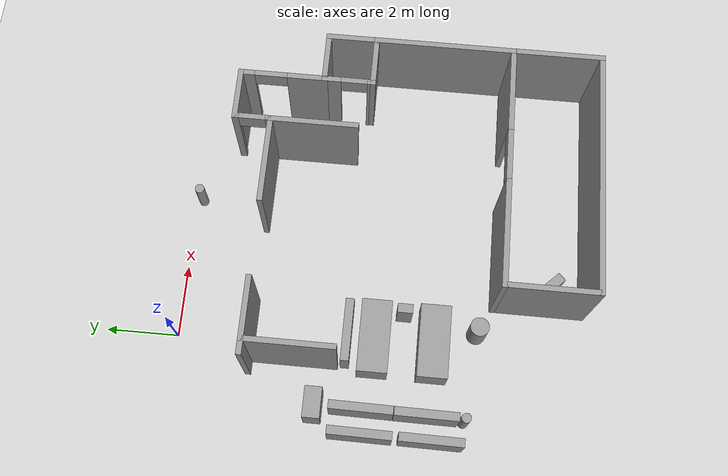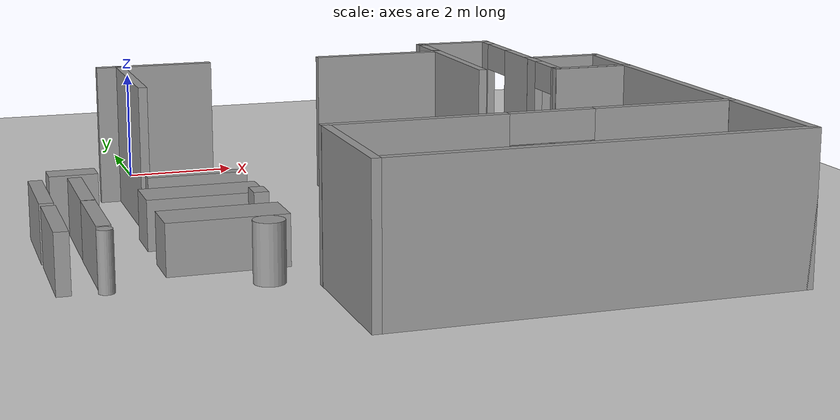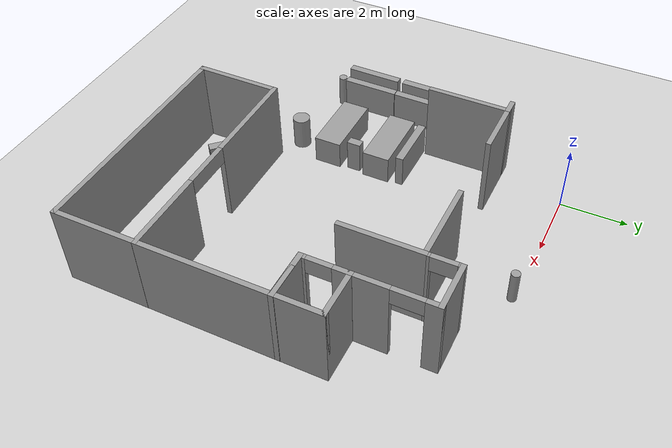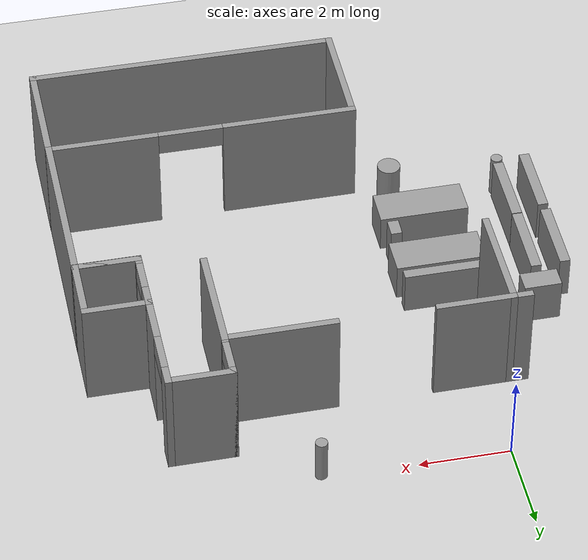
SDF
<sdf version="1.9">
 <world name="default">
  <model name="ground_plane">
   <static>true</static>
   <link name="link">
    <collision name="collision">
     <geometry><plane><normal>0 0 1</normal><size>100 100</size></plane></geometry>
     <surface><friction><ode><mu>100</mu><mu2>50</mu2></ode></friction></surface>
    </collision>
    <visual name="visual">
     <cast_shadows>false</cast_shadows>
     <geometry><plane><normal>0 0 1</normal><size>100 100</size></plane></geometry>
     <material>
      <script><uri>file://media/materials/scripts/gazebo.material</uri><name>Gazebo/Grey</name></script>
     </material>
    </visual>
   </link>
  </model>
  <model name="cma_parede_t">
   <pose>0.15995500000000001 -3.2401599999999999 0 0 0 0</pose>
   <link name="Wall_15">
    <collision name="Wall_15_Collision">
     <geometry><box><size>2.5 0.14999999999999999 2.5</size></box></geometry>
     <pose>0 0 1.25 0 0 0</pose>
    </collision>
    <visual name="Wall_15_Visual">
     <pose>0 0 1.25 0 0 0</pose>
     <geometry><box><size>2.5 0.14999999999999999 2.5</size></box></geometry>
     <material>
      <script><uri>file://media/materials/scripts/gazebo.material</uri><name>Gazebo/Grey</name></script>
      <ambient>1 1 1 1</ambient>
     </material>
    </visual>
    <pose>-0.625 0 0 0 0 1.5708</pose>
   </link>
   <link name="Wall_16">
    <collision name="Wall_16_Collision">
     <geometry><box><size>0.5 0.14999999999999999 2.5</size></box></geometry>
     <pose>0 0 1.25 0 0 0</pose>
    </collision>
    <visual name="Wall_16_Visual">
     <pose>0 0 1.25 0 0 0</pose>
     <geometry><box><size>0.5 0.14999999999999999 2.5</size></box></geometry>
     <material>
      <script><uri>file://media/materials/scripts/gazebo.material</uri><name>Gazebo/Grey</name></script>
      <ambient>1 1 1 1</ambient>
     </material>
    </visual>
    <pose>-0.80000000000000004 1.175 0 0 0 3.1415899999999999</pose>
   </link>
   <link name="Wall_18">
    <collision name="Wall_18_Collision">
     <geometry><box><size>1.75 0.14999999999999999 2.5</size></box></geometry>
     <pose>0 0 1.25 0 0 0</pose>
    </collision>
    <visual name="Wall_18_Visual">
     <pose>0 0 1.25 0 0 0</pose>
     <geometry><box><size>1.75 0.14999999999999999 2.5</size></box></geometry>
     <material>
      <script><uri>file://media/materials/scripts/gazebo.material</uri><name>Gazebo/Grey</name></script>
      <ambient>1 1 1 1</ambient>
     </material>
    </visual>
    <pose>0.17499999999999999 1.175 0 0 0 0</pose>
   </link>
   <static>true</static>
  </model>
  <model name="cma_parede_L">
   <pose>4.97628 -6.6999199999999997 0 0 0 0</pose>
   <link name="Wall_0">
    <pose>0 -1.925 0 0 0 0</pose>
    <visual name="Wall_0_Visual_0">
     <pose>-1.9850000000000001 0 1.25 0 0 0</pose>
     <geometry><box><size>3.0299999999999998 0.14999999999999999 2.5</size></box></geometry>
     <material>
      <script><uri>file://media/materials/scripts/gazebo.material</uri><name>Gazebo/Grey</name></script>
      <ambient>1 1 1 1</ambient>
     </material>
    </visual>
    <collision name="Wall_0_Collision_0">
     <geometry><box><size>3.0299999999999998 0.14999999999999999 2.5</size></box></geometry>
     <pose>-1.9850000000000001 0 1.25 0 0 0</pose>
    </collision>
    <visual name="Wall_0_Visual_1">
     <pose>2.2400000000000002 0 1.25 0 0 0</pose>
     <geometry><box><size>2.52 0.14999999999999999 2.5</size></box></geometry>
     <material>
      <script><uri>file://media/materials/scripts/gazebo.material</uri><name>Gazebo/Grey</name></script>
      <ambient>1 1 1 1</ambient>
     </material>
    </visual>
    <collision name="Wall_0_Collision_1">
     <geometry><box><size>2.52 0.14999999999999999 2.5</size></box></geometry>
     <pose>2.2400000000000002 0 1.25 0 0 0</pose>
    </collision>
    <visual name="Wall_0_Visual_2">
     <pose>0.255 0 2.25 0 0 0</pose>
     <geometry><box><size>1.45 0.14999999999999999 0.5</size></box></geometry>
     <material>
      <script><uri>file://media/materials/scripts/gazebo.material</uri><name>Gazebo/Grey</name></script>
      <ambient>1 1 1 1</ambient>
     </material>
    </visual>
    <collision name="Wall_0_Collision_2">
     <geometry><box><size>1.45 0.14999999999999999 0.5</size></box></geometry>
     <pose>0.255 0 2.25 0 0 0</pose>
    </collision>
   </link>
   <link name="Wall_1">
    <collision name="Wall_1_Collision">
     <geometry><box><size>4 0.14999999999999999 2.5</size></box></geometry>
     <pose>0 0 1.25 0 0 0</pose>
    </collision>
    <visual name="Wall_1_Visual">
     <pose>0 0 1.25 0 0 0</pose>
     <geometry><box><size>4 0.14999999999999999 2.5</size></box></geometry>
     <material>
      <script><uri>file://media/materials/scripts/gazebo.material</uri><name>Gazebo/Grey</name></script>
      <ambient>1 1 1 1</ambient>
     </material>
    </visual>
    <pose>3.4249999999999998 0 0 0 0 1.5708</pose>
   </link>
   <link name="Wall_2">
    <collision name="Wall_2_Collision">
     <geometry><box><size>1.5 0.14999999999999999 2.5</size></box></geometry>
     <pose>0 0 1.25 0 0 0</pose>
    </collision>
    <visual name="Wall_2_Visual">
     <pose>0 0 1.25 0 0 0</pose>
     <geometry><box><size>1.5 0.14999999999999999 2.5</size></box></geometry>
     <material>
      <script><uri>file://media/materials/scripts/gazebo.material</uri><name>Gazebo/Grey</name></script>
      <ambient>1 1 1 1</ambient>
     </material>
    </visual>
    <pose>2.75 1.925 0 0 0 3.1415899999999999</pose>
   </link>
   <static>true</static>
  </model>
  <model name="cma_lavabo">
   <pose>7.7229700000000001 -4.0930200000000001 0 0 0 0</pose>
   <link name="Wall_4">
    <pose>-0.67500000000000004 0 0 0 0 1.5708</pose>
    <visual name="Wall_4_Visual_0">
     <pose>-0.63500000000000001 0 1.25 0 0 0</pose>
     <geometry><box><size>0.23000000000000001 0.14999999999999999 2.5</size></box></geometry>
     <material>
      <script><uri>file://media/materials/scripts/gazebo.material</uri><name>Gazebo/Grey</name></script>
      <ambient>1 1 1 1</ambient>
     </material>
    </visual>
    <collision name="Wall_4_Collision_0">
     <geometry><box><size>0.23000000000000001 0.14999999999999999 2.5</size></box></geometry>
     <pose>-0.63500000000000001 0 1.25 0 0 0</pose>
    </collision>
    <visual name="Wall_4_Visual_1">
     <pose>0.47999999999999998 0 1.25 0 0 0</pose>
     <geometry><box><size>0.54000000000000004 0.14999999999999999 2.5</size></box></geometry>
     <material>
      <script><uri>file://media/materials/scripts/gazebo.material</uri><name>Gazebo/Grey</name></script>
      <ambient>1 1 1 1</ambient>
     </material>
    </visual>
    <collision name="Wall_4_Collision_1">
     <geometry><box><size>0.54000000000000004 0.14999999999999999 2.5</size></box></geometry>
     <pose>0.47999999999999998 0 1.25 0 0 0</pose>
    </collision>
    <visual name="Wall_4_Visual_2">
     <pose>-0.155 0 2.25 0 0 0</pose>
     <geometry><box><size>0.72999999999999998 0.14999999999999999 0.5</size></box></geometry>
     <material>
      <script><uri>file://media/materials/scripts/gazebo.material</uri><name>Gazebo/Grey</name></script>
      <ambient>1 1 1 1</ambient>
     </material>
    </visual>
    <collision name="Wall_4_Collision_2">
     <geometry><box><size>0.72999999999999998 0.14999999999999999 0.5</size></box></geometry>
     <pose>-0.155 0 2.25 0 0 0</pose>
    </collision>
   </link>
   <link name="Wall_5">
    <collision name="Wall_5_Collision">
     <geometry><box><size>1.5 0.14999999999999999 2.5</size></box></geometry>
     <pose>0 0 1.25 0 0 0</pose>
    </collision>
    <visual name="Wall_5_Visual">
     <pose>0 0 1.25 0 0 0</pose>
     <geometry><box><size>1.5 0.14999999999999999 2.5</size></box></geometry>
     <material>
      <script><uri>file://media/materials/scripts/gazebo.material</uri><name>Gazebo/Grey</name></script>
      <ambient>1 1 1 1</ambient>
     </material>
    </visual>
    <pose>0 0.67500000000000004 0 0 0 0</pose>
   </link>
   <link name="Wall_6">
    <collision name="Wall_6_Collision">
     <geometry><box><size>1.5 0.14999999999999999 2.5</size></box></geometry>
     <pose>0 0 1.25 0 0 0</pose>
    </collision>
    <visual name="Wall_6_Visual">
     <pose>0 0 1.25 0 0 0</pose>
     <geometry><box><size>1.5 0.14999999999999999 2.5</size></box></geometry>
     <material>
      <script><uri>file://media/materials/scripts/gazebo.material</uri><name>Gazebo/Grey</name></script>
      <ambient>1 1 1 1</ambient>
     </material>
    </visual>
    <pose>0.67500000000000004 0 0 0 0 -1.5708</pose>
   </link>
   <link name="Wall_7">
    <collision name="Wall_7_Collision">
     <geometry><box><size>1.5 0.14999999999999999 2.5</size></box></geometry>
     <pose>0 0 1.25 0 0 0</pose>
    </collision>
    <visual name="Wall_7_Visual">
     <pose>0 0 1.25 0 0 0</pose>
     <geometry><box><size>1.5 0.14999999999999999 2.5</size></box></geometry>
     <material>
      <script><uri>file://media/materials/scripts/gazebo.material</uri><name>Gazebo/Grey</name></script>
      <ambient>1 1 1 1</ambient>
     </material>
    </visual>
    <pose>0 -0.67500000000000004 0 0 0 3.1415899999999999</pose>
   </link>
   <static>true</static>
  </model>
  <model name="cma_L2">
   <pose>4.5168299999999997 -3.24587 0 0 0 0</pose>
   <link name="Wall_10">
    <collision name="Wall_10_Collision">
     <geometry><box><size>2.5 0.14999999999999999 2.5</size></box></geometry>
     <pose>0 0 1.25 0 0 0</pose>
    </collision>
    <visual name="Wall_10_Visual">
     <pose>0 0 1.25 0 0 0</pose>
     <geometry><box><size>2.5 0.14999999999999999 2.5</size></box></geometry>
     <material>
      <script><uri>file://media/materials/scripts/gazebo.material</uri><name>Gazebo/Grey</name></script>
      <ambient>1 1 1 1</ambient>
     </material>
    </visual>
    <pose>1.175 0 0 0 0 -1.5708</pose>
   </link>
   <link name="Wall_9">
    <collision name="Wall_9_Collision">
     <geometry><box><size>2.5 0.14999999999999999 2.5</size></box></geometry>
     <pose>0 0 1.25 0 0 0</pose>
    </collision>
    <visual name="Wall_9_Visual">
     <pose>0 0 1.25 0 0 0</pose>
     <geometry><box><size>2.5 0.14999999999999999 2.5</size></box></geometry>
     <material>
      <script><uri>file://media/materials/scripts/gazebo.material</uri><name>Gazebo/Grey</name></script>
      <ambient>1 1 1 1</ambient>
     </material>
    </visual>
    <pose>0 1.175 0 0 0 0</pose>
   </link>
   <static>true</static>
  </model>
  <model name="cma_L3">
   <pose>6.3722099999999999 -2.2602199999999999 0 0 0 0</pose>
   <link name="Wall_12">
    <pose>-0.67500000000000004 0.75 0 0 0 1.5708</pose>
    <visual name="Wall_12_Visual_0">
     <pose>-0.46000000000000002 0 1.25 0 0 0</pose>
     <geometry><box><size>0.080000000000000002 0.14999999999999999 2.5</size></box></geometry>
     <material>
      <script><uri>file://media/materials/scripts/gazebo.material</uri><name>Gazebo/Grey</name></script>
      <ambient>1 1 1 1</ambient>
     </material>
    </visual>
    <collision name="Wall_12_Collision_0">
     <geometry><box><size>0.080000000000000002 0.14999999999999999 2.5</size></box></geometry>
     <pose>-0.46000000000000002 0 1.25 0 0 0</pose>
    </collision>
    <visual name="Wall_12_Visual_1">
     <pose>0.40500000000000003 0 1.25 0 0 0</pose>
     <geometry><box><size>0.19 0.14999999999999999 2.5</size></box></geometry>
     <material>
      <script><uri>file://media/materials/scripts/gazebo.material</uri><name>Gazebo/Grey</name></script>
      <ambient>1 1 1 1</ambient>
     </material>
    </visual>
    <collision name="Wall_12_Collision_1">
     <geometry><box><size>0.19 0.14999999999999999 2.5</size></box></geometry>
     <pose>0.40500000000000003 0 1.25 0 0 0</pose>
    </collision>
    <visual name="Wall_12_Visual_2">
     <pose>-0.055 0 2.25 0 0 0</pose>
     <geometry><box><size>0.72999999999999998 0.14999999999999999 0.5</size></box></geometry>
     <material>
      <script><uri>file://media/materials/scripts/gazebo.material</uri><name>Gazebo/Grey</name></script>
      <ambient>1 1 1 1</ambient>
     </material>
    </visual>
    <collision name="Wall_12_Collision_2">
     <geometry><box><size>0.72999999999999998 0.14999999999999999 0.5</size></box></geometry>
     <pose>-0.055 0 2.25 0 0 0</pose>
    </collision>
   </link>
   <link name="Wall_13">
    <collision name="Wall_13_Collision">
     <geometry><box><size>1.5 0.14999999999999999 2.5</size></box></geometry>
     <pose>0 0 1.25 0 0 0</pose>
    </collision>
    <visual name="Wall_13_Visual">
     <pose>0 0 1.25 0 0 0</pose>
     <geometry><box><size>1.5 0.14999999999999999 2.5</size></box></geometry>
     <material>
      <script><uri>file://media/materials/scripts/gazebo.material</uri><name>Gazebo/Grey</name></script>
      <ambient>1 1 1 1</ambient>
     </material>
    </visual>
    <pose>0 1.175 0 0 0 0</pose>
   </link>
   <link name="Wall_14">
    <pose>0.67500000000000004 0 0 0 0 -1.5708</pose>
    <visual name="Wall_14_Visual_0">
     <pose>-1.0175000000000001 0 1.25 0 0 0</pose>
     <geometry><box><size>0.46500000000000002 0.14999999999999999 2.5</size></box></geometry>
     <material>
      <script><uri>file://media/materials/scripts/gazebo.material</uri><name>Gazebo/Grey</name></script>
      <ambient>1 1 1 1</ambient>
     </material>
    </visual>
    <collision name="Wall_14_Collision_0">
     <geometry><box><size>0.46500000000000002 0.14999999999999999 2.5</size></box></geometry>
     <pose>-1.0175000000000001 0 1.25 0 0 0</pose>
    </collision>
    <visual name="Wall_14_Visual_1">
     <pose>0.6825 0 1.25 0 0 0</pose>
     <geometry><box><size>1.135 0.14999999999999999 2.5</size></box></geometry>
     <material>
      <script><uri>file://media/materials/scripts/gazebo.material</uri><name>Gazebo/Grey</name></script>
      <ambient>1 1 1 1</ambient>
     </material>
    </visual>
    <collision name="Wall_14_Collision_1">
     <geometry><box><size>1.135 0.14999999999999999 2.5</size></box></geometry>
     <pose>0.6825 0 1.25 0 0 0</pose>
    </collision>
    <visual name="Wall_14_Visual_2">
     <pose>-0.33500000000000002 0 2.25 0 0 0</pose>
     <geometry><box><size>0.90000000000000002 0.14999999999999999 0.5</size></box></geometry>
     <material>
      <script><uri>file://media/materials/scripts/gazebo.material</uri><name>Gazebo/Grey</name></script>
      <ambient>1 1 1 1</ambient>
     </material>
    </visual>
    <collision name="Wall_14_Collision_2">
     <geometry><box><size>0.90000000000000002 0.14999999999999999 0.5</size></box></geometry>
     <pose>-0.33500000000000002 0 2.25 0 0 0</pose>
    </collision>
   </link>
   <static>true</static>
  </model>
  <model name="cma_U">
   <pose>4.9789500000000002 -9.92408 0 0 0 0</pose>
   <link name="Wall_16">
    <collision name="Wall_16_Collision">
     <geometry><box><size>2.5 0.14999999999999999 2.5</size></box></geometry>
     <pose>0 0 1.25 0 0 0</pose>
    </collision>
    <visual name="Wall_16_Visual">
     <pose>0 0 1.25 0 0 0</pose>
     <geometry><box><size>2.5 0.14999999999999999 2.5</size></box></geometry>
     <material>
      <script><uri>file://media/materials/scripts/gazebo.material</uri><name>Gazebo/Grey</name></script>
      <ambient>1 1 1 1</ambient>
     </material>
    </visual>
    <pose>-3.4249999999999998 0 0 0 0 -1.5708</pose>
   </link>
   <link name="Wall_17">
    <collision name="Wall_17_Collision">
     <geometry><box><size>7 0.14999999999999999 2.5</size></box></geometry>
     <pose>0 0 1.25 0 0 0</pose>
    </collision>
    <visual name="Wall_17_Visual">
     <pose>0 0 1.25 0 0 0</pose>
     <geometry><box><size>7 0.14999999999999999 2.5</size></box></geometry>
     <material>
      <script><uri>file://media/materials/scripts/gazebo.material</uri><name>Gazebo/Grey</name></script>
      <ambient>1 1 1 1</ambient>
     </material>
    </visual>
    <pose>0 -1.175 0 0 0 0</pose>
   </link>
   <link name="Wall_18">
    <collision name="Wall_18_Collision">
     <geometry><box><size>2.5 0.14999999999999999 2.5</size></box></geometry>
     <pose>0 0 1.25 0 0 0</pose>
    </collision>
    <visual name="Wall_18_Visual">
     <pose>0 0 1.25 0 0 0</pose>
     <geometry><box><size>2.5 0.14999999999999999 2.5</size></box></geometry>
     <material>
      <script><uri>file://media/materials/scripts/gazebo.material</uri><name>Gazebo/Grey</name></script>
      <ambient>1 1 1 1</ambient>
     </material>
    </visual>
    <pose>3.4249999999999998 0 0 0 0 1.5708</pose>
   </link>
   <static>true</static>
  </model>
  <model name="cma_armario_s">
   <link name="link_1">
    <pose>-1.9999999999999999e-06 -3.0000000000000001e-06 0 0 0 0</pose>
    <inertial>
     <mass>0.39015899999999998</mass>
     <inertia>
      <ixx>0.039647000000000002</ixx>
      <ixy>0</ixy>
      <ixz>0</ixz>
      <iyy>0.055070800000000003</iyy>
      <iyz>0</iyz>
      <izz>0.029691200000000001</izz>
     </inertia>
    </inertial>
    <visual name="visual">
     <geometry><box><size>0.83294199999999996 0.46839700000000001 1</size></box></geometry>
     <material>
      <lighting>true</lighting>
      <script><uri>file://media/materials/scripts/gazebo.material</uri><name>Gazebo/Grey</name></script>
      <ambient>0.300000012 0.300000012 0.300000012 1</ambient>
      <diffuse>0.699999988 0.699999988 0.699999988 1</diffuse>
      <specular>0.00999999978 0.00999999978 0.00999999978 1</specular>
      <emissive>0 0 0 1</emissive>
     </material>
    </visual>
    <collision name="collision">
     <geometry><box><size>0.83294199999999996 0.46839700000000001 1</size></box></geometry>
     <surface>
      <friction>
       <ode><mu>1</mu><mu2>1</mu2><fdir1>0 0 0</fdir1><slip1>0</slip1><slip2>0</slip2></ode>
       <torsional>
        <coefficient>1</coefficient>
        <patch_radius>0</patch_radius>
        <surface_radius>0</surface_radius>
        <use_patch_radius>true</use_patch_radius>
        <ode><slip>0</slip></ode>
       </torsional>
      </friction>
      <bounce><restitution_coefficient>0</restitution_coefficient><threshold>1000000</threshold></bounce>
      <contact>
       <collide_without_contact>false</collide_without_contact>
       <collide_without_contact_bitmask>1</collide_without_contact_bitmask>
       <collide_bitmask>1</collide_bitmask>
       <ode>
        <soft_cfm>0</soft_cfm>
        <soft_erp>0.20000000000000001</soft_erp>
        <kp>10000000000000</kp>
        <kd>1</kd>
        <max_vel>0.01</max_vel>
        <min_depth>0</min_depth>
       </ode>
       <bullet>
        <split_impulse>true</split_impulse>
        <split_impulse_penetration_threshold>-0.01</split_impulse_penetration_threshold>
        <soft_cfm>0</soft_cfm>
        <soft_erp>0.20000000000000001</soft_erp>
        <kp>10000000000000</kp>
        <kd>1</kd>
       </bullet>
      </contact>
     </surface>
    </collision>
   </link>
   <static>false</static>
   <pose>-1.6383700000000001 -3.9378099999999998 0.5 3.9999999999999998e-06 3.0000000000000001e-06 0.0013220000000000003</pose>
  </model>
  <model name="cma_armario_2">
   <link name="link_0">
    <pose>1.3215699999999999 0.88517800000000002 0.5 0 0 0</pose>
    <inertial>
     <mass>0.40237600000000001</mass>
     <inertia>
      <ixx>0.0353686</ixx>
      <ixy>0</ixy>
      <ixz>0</ixz>
      <iyy>0.13261600000000001</iyy>
      <iyz>0</iyz>
      <izz>0.100922</izz>
     </inertia>
    </inertial>
    <visual name="visual">
     <geometry><box><size>1.7187699999999999 0.234069 1</size></box></geometry>
     <material>
      <lighting>true</lighting>
      <script><uri>file://media/materials/scripts/gazebo.material</uri><name>Gazebo/Grey</name></script>
      <ambient>0.300000012 0.300000012 0.300000012 1</ambient>
      <diffuse>0.699999988 0.699999988 0.699999988 1</diffuse>
      <specular>0.00999999978 0.00999999978 0.00999999978 1</specular>
      <emissive>0 0 0 1</emissive>
     </material>
    </visual>
    <collision name="collision">
     <geometry><box><size>1.7187699999999999 0.234069 1</size></box></geometry>
     <surface>
      <friction>
       <ode><mu>1</mu><mu2>1</mu2><fdir1>0 0 0</fdir1><slip1>0</slip1><slip2>0</slip2></ode>
       <torsional>
        <coefficient>1</coefficient>
        <patch_radius>0</patch_radius>
        <surface_radius>0</surface_radius>
        <use_patch_radius>true</use_patch_radius>
        <ode><slip>0</slip></ode>
       </torsional>
      </friction>
      <bounce><restitution_coefficient>0</restitution_coefficient><threshold>1000000</threshold></bounce>
      <contact>
       <collide_without_contact>false</collide_without_contact>
       <collide_without_contact_bitmask>1</collide_without_contact_bitmask>
       <collide_bitmask>1</collide_bitmask>
       <ode>
        <soft_cfm>0</soft_cfm>
        <soft_erp>0.20000000000000001</soft_erp>
        <kp>10000000000000</kp>
        <kd>1</kd>
        <max_vel>0.01</max_vel>
        <min_depth>0</min_depth>
       </ode>
       <bullet>
        <split_impulse>true</split_impulse>
        <split_impulse_penetration_threshold>-0.01</split_impulse_penetration_threshold>
        <soft_cfm>0</soft_cfm>
        <soft_erp>0.20000000000000001</soft_erp>
        <kp>10000000000000</kp>
        <kd>1</kd>
       </bullet>
      </contact>
     </surface>
    </collision>
   </link>
   <static>false</static>
   <pose>-1.4423999999999999 -6.5635199999999996 1.9999999999999999e-06 -2.0000000000000003e-06 2.1175823681357508e-22 1.56237</pose>
  </model>
  <model name="cma_armario_2_clone">
   <link name="link_0">
    <pose>1.3215699999999999 0.88517800000000002 0.5 0 0 0</pose>
    <inertial>
     <mass>0.40237600000000001</mass>
     <inertia>
      <ixx>0.0353686</ixx>
      <ixy>0</ixy>
      <ixz>0</ixz>
      <iyy>0.13261600000000001</iyy>
      <iyz>0</iyz>
      <izz>0.100922</izz>
     </inertia>
    </inertial>
    <visual name="visual">
     <geometry><box><size>1.7187699999999999 0.234069 1</size></box></geometry>
     <material>
      <lighting>true</lighting>
      <script><uri>file://media/materials/scripts/gazebo.material</uri><name>Gazebo/Grey</name></script>
      <ambient>0.300000012 0.300000012 0.300000012 1</ambient>
      <diffuse>0.699999988 0.699999988 0.699999988 1</diffuse>
      <specular>0.00999999978 0.00999999978 0.00999999978 1</specular>
      <emissive>0 0 0 1</emissive>
     </material>
    </visual>
    <collision name="collision">
     <geometry><box><size>1.7187699999999999 0.234069 1</size></box></geometry>
     <surface>
      <friction>
       <ode><mu>1</mu><mu2>1</mu2><fdir1>0 0 0</fdir1><slip1>0</slip1><slip2>0</slip2></ode>
       <torsional>
        <coefficient>1</coefficient>
        <patch_radius>0</patch_radius>
        <surface_radius>0</surface_radius>
        <use_patch_radius>true</use_patch_radius>
        <ode><slip>0</slip></ode>
       </torsional>
      </friction>
      <bounce><restitution_coefficient>0</restitution_coefficient><threshold>1000000</threshold></bounce>
      <contact>
       <collide_without_contact>false</collide_without_contact>
       <collide_without_contact_bitmask>1</collide_without_contact_bitmask>
       <collide_bitmask>1</collide_bitmask>
       <ode>
        <soft_cfm>0</soft_cfm>
        <soft_erp>0.20000000000000001</soft_erp>
        <kp>10000000000000</kp>
        <kd>1</kd>
        <max_vel>0.01</max_vel>
        <min_depth>0</min_depth>
       </ode>
       <bullet>
        <split_impulse>true</split_impulse>
        <split_impulse_penetration_threshold>-0.01</split_impulse_penetration_threshold>
        <soft_cfm>0</soft_cfm>
        <soft_erp>0.20000000000000001</soft_erp>
        <kp>10000000000000</kp>
        <kd>1</kd>
       </bullet>
      </contact>
     </surface>
    </collision>
   </link>
   <static>false</static>
   <pose>-1.4489399999999999 -8.4464299999999994 1.9999999999999999e-06 -2.0000000000000003e-06 2.1175823681357508e-22 1.56237</pose>
  </model>
  <model name="cma_cama_s">
   <link name="link_0">
    <pose>0 1.9999999999999999e-06 0 0 0 0</pose>
    <inertial>
     <mass>1.44546</mass>
     <inertia>
      <ixx>0.173816</ixx>
      <ixy>0</ixy>
      <ixz>0</ixz>
      <iyy>0.57522300000000004</iyy>
      <iyz>0</iyz>
      <izz>0.56745999999999996</izz>
     </inertia>
    </inertial>
    <visual name="visual">
     <geometry><box><size>2.0053999999999998 0.83022700000000005 0.86816300000000002</size></box></geometry>
     <material>
      <lighting>true</lighting>
      <script><uri>file://media/materials/scripts/gazebo.material</uri><name>Gazebo/Grey</name></script>
      <ambient>0.300000012 0.300000012 0.300000012 1</ambient>
      <diffuse>0.699999988 0.699999988 0.699999988 1</diffuse>
      <specular>0.00999999978 0.00999999978 0.00999999978 1</specular>
      <emissive>0 0 0 1</emissive>
     </material>
    </visual>
    <collision name="collision">
     <geometry><box><size>2.0053999999999998 0.83022700000000005 0.86816300000000002</size></box></geometry>
     <surface>
      <friction>
       <ode><mu>1</mu><mu2>1</mu2><fdir1>0 0 0</fdir1><slip1>0</slip1><slip2>0</slip2></ode>
       <torsional>
        <coefficient>1</coefficient>
        <patch_radius>0</patch_radius>
        <surface_radius>0</surface_radius>
        <use_patch_radius>true</use_patch_radius>
        <ode><slip>0</slip></ode>
       </torsional>
      </friction>
      <bounce><restitution_coefficient>0</restitution_coefficient><threshold>1000000</threshold></bounce>
      <contact>
       <collide_without_contact>false</collide_without_contact>
       <collide_without_contact_bitmask>1</collide_without_contact_bitmask>
       <collide_bitmask>1</collide_bitmask>
       <ode>
        <soft_cfm>0</soft_cfm>
        <soft_erp>0.20000000000000001</soft_erp>
        <kp>10000000000000</kp>
        <kd>1</kd>
        <max_vel>0.01</max_vel>
        <min_depth>0</min_depth>
       </ode>
       <bullet>
        <split_impulse>true</split_impulse>
        <split_impulse_penetration_threshold>-0.01</split_impulse_penetration_threshold>
        <soft_cfm>0</soft_cfm>
        <soft_erp>0.20000000000000001</soft_erp>
        <kp>10000000000000</kp>
        <kd>1</kd>
       </bullet>
      </contact>
     </surface>
    </collision>
   </link>
   <static>false</static>
   <pose>0.31370399999999998 -5.42014 0.43408200000000002 0 0 -3.9999999999999998e-06</pose>
  </model>
  <model name="cma_cama_s_0">
   <link name="link_0">
    <pose>0 1.9999999999999999e-06 0 0 0 0</pose>
    <inertial>
     <mass>1.44546</mass>
     <inertia>
      <ixx>0.173816</ixx>
      <ixy>0</ixy>
      <ixz>0</ixz>
      <iyy>0.57522300000000004</iyy>
      <iyz>0</iyz>
      <izz>0.56745999999999996</izz>
     </inertia>
    </inertial>
    <visual name="visual">
     <geometry><box><size>2.0053999999999998 0.83022700000000005 0.86816300000000002</size></box></geometry>
     <material>
      <lighting>true</lighting>
      <script><uri>file://media/materials/scripts/gazebo.material</uri><name>Gazebo/Grey</name></script>
      <ambient>0.300000012 0.300000012 0.300000012 1</ambient>
      <diffuse>0.699999988 0.699999988 0.699999988 1</diffuse>
      <specular>0.00999999978 0.00999999978 0.00999999978 1</specular>
      <emissive>0 0 0 1</emissive>
     </material>
    </visual>
    <collision name="collision">
     <geometry><box><size>2.0053999999999998 0.83022700000000005 0.86816300000000002</size></box></geometry>
     <surface>
      <friction>
       <ode><mu>1</mu><mu2>1</mu2><fdir1>0 0 0</fdir1><slip1>0</slip1><slip2>0</slip2></ode>
       <torsional>
        <coefficient>1</coefficient>
        <patch_radius>0</patch_radius>
        <surface_radius>0</surface_radius>
        <use_patch_radius>true</use_patch_radius>
        <ode><slip>0</slip></ode>
       </torsional>
      </friction>
      <bounce><restitution_coefficient>0</restitution_coefficient><threshold>1000000</threshold></bounce>
      <contact>
       <collide_without_contact>false</collide_without_contact>
       <collide_without_contact_bitmask>1</collide_without_contact_bitmask>
       <collide_bitmask>1</collide_bitmask>
       <ode>
        <soft_cfm>0</soft_cfm>
        <soft_erp>0.20000000000000001</soft_erp>
        <kp>10000000000000</kp>
        <kd>1</kd>
        <max_vel>0.01</max_vel>
        <min_depth>0</min_depth>
       </ode>
       <bullet>
        <split_impulse>true</split_impulse>
        <split_impulse_penetration_threshold>-0.01</split_impulse_penetration_threshold>
        <soft_cfm>0</soft_cfm>
        <soft_erp>0.20000000000000001</soft_erp>
        <kp>10000000000000</kp>
        <kd>1</kd>
       </bullet>
      </contact>
     </surface>
    </collision>
   </link>
   <static>false</static>
   <pose>0.31302600000000003 -7.03078 0.43408200000000002 0 0 0</pose>
  </model>
  <model name="cma_picador">
   <link name="link_2">
    <pose>-0.7258 -1.6910400000000001 0 0 0 0</pose>
    <inertial>
     <mass>0.10473200000000001</mass>
     <inertia>
      <ixx>0.0092790600000000004</ixx>
      <ixy>0</ixy>
      <ixz>0</ixz>
      <iyy>0.010243</iyy>
      <iyz>0</iyz>
      <izz>0.0020667200000000002</izz>
     </inertia>
    </inertial>
    <visual name="visual">
     <geometry><box><size>0.416688 0.25134000000000001 1</size></box></geometry>
     <material>
      <lighting>true</lighting>
      <script><uri>file://media/materials/scripts/gazebo.material</uri><name>Gazebo/Grey</name></script>
      <ambient>0.300000012 0.300000012 0.300000012 1</ambient>
      <diffuse>0.699999988 0.699999988 0.699999988 1</diffuse>
      <specular>0.00999999978 0.00999999978 0.00999999978 1</specular>
      <emissive>0 0 0 1</emissive>
     </material>
    </visual>
    <collision name="collision">
     <geometry><box><size>0.416688 0.25134000000000001 1</size></box></geometry>
     <surface>
      <friction>
       <ode><mu>1</mu><mu2>1</mu2><fdir1>0 0 0</fdir1><slip1>0</slip1><slip2>0</slip2></ode>
       <torsional>
        <coefficient>1</coefficient>
        <patch_radius>0</patch_radius>
        <surface_radius>0</surface_radius>
        <use_patch_radius>true</use_patch_radius>
        <ode><slip>0</slip></ode>
       </torsional>
      </friction>
      <bounce><restitution_coefficient>0</restitution_coefficient><threshold>1000000</threshold></bounce>
      <contact>
       <collide_without_contact>false</collide_without_contact>
       <collide_without_contact_bitmask>1</collide_without_contact_bitmask>
       <collide_bitmask>1</collide_bitmask>
       <ode>
        <soft_cfm>0</soft_cfm>
        <soft_erp>0.20000000000000001</soft_erp>
        <kp>10000000000000</kp>
        <kd>1</kd>
        <max_vel>0.01</max_vel>
        <min_depth>0</min_depth>
       </ode>
       <bullet>
        <split_impulse>true</split_impulse>
        <split_impulse_penetration_threshold>-0.01</split_impulse_penetration_threshold>
        <soft_cfm>0</soft_cfm>
        <soft_erp>0.20000000000000001</soft_erp>
        <kp>10000000000000</kp>
        <kd>1</kd>
       </bullet>
      </contact>
     </surface>
    </collision>
   </link>
   <static>false</static>
   <pose>-0.58359300000000003 -5.4507899999999996 0.5 9.9999999999999995e-07 2.0000000000000008e-06 1.5632599999999999</pose>
  </model>
  <model name="cma_armario_3">
   <link name="link_0">
    <pose>1.3215699999999999 0.88517800000000002 0.5 0 0 0</pose>
    <inertial>
     <mass>0.40237600000000001</mass>
     <inertia>
      <ixx>0.0353686</ixx>
      <ixy>0</ixy>
      <ixz>0</ixz>
      <iyy>0.13261600000000001</iyy>
      <iyz>0</iyz>
      <izz>0.100922</izz>
     </inertia>
    </inertial>
    <visual name="visual">
     <geometry><box><size>1.7187699999999999 0.234069 1</size></box></geometry>
     <material>
      <lighting>true</lighting>
      <script><uri>file://media/materials/scripts/gazebo.material</uri><name>Gazebo/Grey</name></script>
      <ambient>0.300000012 0.300000012 0.300000012 1</ambient>
      <diffuse>0.699999988 0.699999988 0.699999988 1</diffuse>
      <specular>0.00999999978 0.00999999978 0.00999999978 1</specular>
      <emissive>0 0 0 1</emissive>
     </material>
    </visual>
    <collision name="collision">
     <geometry><box><size>1.7187699999999999 0.234069 1</size></box></geometry>
     <surface>
      <friction>
       <ode><mu>1</mu><mu2>1</mu2><fdir1>0 0 0</fdir1><slip1>0</slip1><slip2>0</slip2></ode>
       <torsional>
        <coefficient>1</coefficient>
        <patch_radius>0</patch_radius>
        <surface_radius>0</surface_radius>
        <use_patch_radius>true</use_patch_radius>
        <ode><slip>0</slip></ode>
       </torsional>
      </friction>
      <bounce><restitution_coefficient>0</restitution_coefficient><threshold>1000000</threshold></bounce>
      <contact>
       <collide_without_contact>false</collide_without_contact>
       <collide_without_contact_bitmask>1</collide_without_contact_bitmask>
       <collide_bitmask>1</collide_bitmask>
       <ode>
        <soft_cfm>0</soft_cfm>
        <soft_erp>0.20000000000000001</soft_erp>
        <kp>10000000000000</kp>
        <kd>1</kd>
        <max_vel>0.01</max_vel>
        <min_depth>0</min_depth>
       </ode>
       <bullet>
        <split_impulse>true</split_impulse>
        <split_impulse_penetration_threshold>-0.01</split_impulse_penetration_threshold>
        <soft_cfm>0</soft_cfm>
        <soft_erp>0.20000000000000001</soft_erp>
        <kp>10000000000000</kp>
        <kd>1</kd>
       </bullet>
      </contact>
     </surface>
    </collision>
   </link>
   <static>false</static>
   <pose>-0.94209399999999999 -5.55504 -3.0000000000000001e-06 2.0000000000000003e-06 4.1359030627651384e-25 -0.0030349999999999999</pose>
  </model>
  <model name="cma_armario_4">
   <link name="link_0">
    <pose>1.3215699999999999 0.88517800000000002 0.5 0 0 0</pose>
    <inertial>
     <mass>0.40237600000000001</mass>
     <inertia>
      <ixx>0.0353686</ixx>
      <ixy>0</ixy>
      <ixz>0</ixz>
      <iyy>0.13261600000000001</iyy>
      <iyz>0</iyz>
      <izz>0.100922</izz>
     </inertia>
    </inertial>
    <visual name="visual">
     <geometry><box><size>1.7187699999999999 0.234069 1</size></box></geometry>
     <material>
      <lighting>true</lighting>
      <script><uri>file://media/materials/scripts/gazebo.material</uri><name>Gazebo/Grey</name></script>
      <ambient>0.300000012 0.300000012 0.300000012 1</ambient>
      <diffuse>0.699999988 0.699999988 0.699999988 1</diffuse>
      <specular>0.00999999978 0.00999999978 0.00999999978 1</specular>
      <emissive>0 0 0 1</emissive>
     </material>
    </visual>
    <collision name="collision">
     <geometry><box><size>1.7187699999999999 0.234069 1</size></box></geometry>
     <surface>
      <friction>
       <ode><mu>1</mu><mu2>1</mu2><fdir1>0 0 0</fdir1><slip1>0</slip1><slip2>0</slip2></ode>
       <torsional>
        <coefficient>1</coefficient>
        <patch_radius>0</patch_radius>
        <surface_radius>0</surface_radius>
        <use_patch_radius>true</use_patch_radius>
        <ode><slip>0</slip></ode>
       </torsional>
      </friction>
      <bounce><restitution_coefficient>0</restitution_coefficient><threshold>1000000</threshold></bounce>
      <contact>
       <collide_without_contact>false</collide_without_contact>
       <collide_without_contact_bitmask>1</collide_without_contact_bitmask>
       <collide_bitmask>1</collide_bitmask>
       <ode>
        <soft_cfm>0</soft_cfm>
        <soft_erp>0.20000000000000001</soft_erp>
        <kp>10000000000000</kp>
        <kd>1</kd>
        <max_vel>0.01</max_vel>
        <min_depth>0</min_depth>
       </ode>
       <bullet>
        <split_impulse>true</split_impulse>
        <split_impulse_penetration_threshold>-0.01</split_impulse_penetration_threshold>
        <soft_cfm>0</soft_cfm>
        <soft_erp>0.20000000000000001</soft_erp>
        <kp>10000000000000</kp>
        <kd>1</kd>
       </bullet>
      </contact>
     </surface>
    </collision>
   </link>
   <static>false</static>
   <pose>-0.78500800000000004 -6.5473299999999997 1.9999999999999999e-06 -2.0000000000000003e-06 0 1.56175</pose>
  </model>
  <model name="cma_armario_5">
   <link name="link_0">
    <pose>1.3215699999999999 0.88517800000000002 0.5 0 0 0</pose>
    <inertial>
     <mass>0.40237600000000001</mass>
     <inertia>
      <ixx>0.0353686</ixx>
      <ixy>0</ixy>
      <ixz>0</ixz>
      <iyy>0.13261600000000001</iyy>
      <iyz>0</iyz>
      <izz>0.100922</izz>
     </inertia>
    </inertial>
    <visual name="visual">
     <geometry><box><size>1.7187699999999999 0.234069 1</size></box></geometry>
     <material>
      <lighting>true</lighting>
      <script><uri>file://media/materials/scripts/gazebo.material</uri><name>Gazebo/Grey</name></script>
      <ambient>0.300000012 0.300000012 0.300000012 1</ambient>
      <diffuse>0.699999988 0.699999988 0.699999988 1</diffuse>
      <specular>0.00999999978 0.00999999978 0.00999999978 1</specular>
      <emissive>0 0 0 1</emissive>
     </material>
    </visual>
    <collision name="collision">
     <geometry><box><size>1.7187699999999999 0.234069 1</size></box></geometry>
     <surface>
      <friction>
       <ode><mu>1</mu><mu2>1</mu2><fdir1>0 0 0</fdir1><slip1>0</slip1><slip2>0</slip2></ode>
       <torsional>
        <coefficient>1</coefficient>
        <patch_radius>0</patch_radius>
        <surface_radius>0</surface_radius>
        <use_patch_radius>true</use_patch_radius>
        <ode><slip>0</slip></ode>
       </torsional>
      </friction>
      <bounce><restitution_coefficient>0</restitution_coefficient><threshold>1000000</threshold></bounce>
      <contact>
       <collide_without_contact>false</collide_without_contact>
       <collide_without_contact_bitmask>1</collide_without_contact_bitmask>
       <collide_bitmask>1</collide_bitmask>
       <ode>
        <soft_cfm>0</soft_cfm>
        <soft_erp>0.20000000000000001</soft_erp>
        <kp>10000000000000</kp>
        <kd>1</kd>
        <max_vel>0.01</max_vel>
        <min_depth>0</min_depth>
       </ode>
       <bullet>
        <split_impulse>true</split_impulse>
        <split_impulse_penetration_threshold>-0.01</split_impulse_penetration_threshold>
        <soft_cfm>0</soft_cfm>
        <soft_erp>0.20000000000000001</soft_erp>
        <kp>10000000000000</kp>
        <kd>1</kd>
       </bullet>
      </contact>
     </surface>
    </collision>
   </link>
   <static>false</static>
   <pose>-0.79352800000000001 -8.2784899999999997 1.9999999999999999e-06 -1.9999999999999999e-06 0 1.5663899999999999</pose>
  </model>
  <model name="cma_lixo_1">
   <link name="link_1">
    <pose>0.88296200000000002 1.81586 0.5 0 0 0</pose>
    <inertial>
     <mass>0.068764400000000003</mass>
     <inertia>
      <ixx>0.00602588</ixx>
      <ixy>0</ixy>
      <ixz>0</ixz>
      <iyy>0.00602588</iyy>
      <iyz>0</iyz>
      <izz>0.00059106800000000004</izz>
     </inertia>
    </inertial>
    <visual name="visual">
     <geometry><cylinder><radius>0.13111200000000001</radius><length>1</length></cylinder></geometry>
     <material>
      <lighting>true</lighting>
      <script><uri>file://media/materials/scripts/gazebo.material</uri><name>Gazebo/Grey</name></script>
      <ambient>0.300000012 0.300000012 0.300000012 1</ambient>
      <diffuse>0.699999988 0.699999988 0.699999988 1</diffuse>
      <specular>0.00999999978 0.00999999978 0.00999999978 1</specular>
      <emissive>0 0 0 1</emissive>
     </material>
    </visual>
    <collision name="collision">
     <geometry><cylinder><radius>0.13111200000000001</radius><length>1</length></cylinder></geometry>
     <surface>
      <friction>
       <ode><mu>1</mu><mu2>1</mu2><fdir1>0 0 0</fdir1><slip1>0</slip1><slip2>0</slip2></ode>
       <torsional>
        <coefficient>1</coefficient>
        <patch_radius>0</patch_radius>
        <surface_radius>0</surface_radius>
        <use_patch_radius>true</use_patch_radius>
        <ode><slip>0</slip></ode>
       </torsional>
      </friction>
      <bounce><restitution_coefficient>0</restitution_coefficient><threshold>1000000</threshold></bounce>
      <contact>
       <collide_without_contact>false</collide_without_contact>
       <collide_without_contact_bitmask>1</collide_without_contact_bitmask>
       <collide_bitmask>1</collide_bitmask>
       <ode>
        <soft_cfm>0</soft_cfm>
        <soft_erp>0.20000000000000001</soft_erp>
        <kp>10000000000000</kp>
        <kd>1</kd>
        <max_vel>0.01</max_vel>
        <min_depth>0</min_depth>
       </ode>
       <bullet>
        <split_impulse>true</split_impulse>
        <split_impulse_penetration_threshold>-0.01</split_impulse_penetration_threshold>
        <soft_cfm>0</soft_cfm>
        <soft_erp>0.20000000000000001</soft_erp>
        <kp>10000000000000</kp>
        <kd>1</kd>
       </bullet>
      </contact>
     </surface>
    </collision>
   </link>
   <static>false</static>
   <pose>-2.5710299999999999 -9.7974999999999994 -3.0000000000000001e-06 0 0 0</pose>
  </model>
  <model name="cma_cesto_0">
   <link name="link_1">
    <pose>-0.32965899999999998 -1.55494 0 0 0 0</pose>
    <inertial>
     <mass>0.267897</mass>
     <inertia>
      <ixx>0.026810199999999999</ixx>
      <ixy>0</ixy>
      <ixz>0</ixz>
      <iyy>0.026810199999999999</iyy>
      <iyz>0</iyz>
      <izz>0.0089711099999999992</izz>
     </inertia>
    </inertial>
    <visual name="visual">
     <geometry><cylinder><radius>0.25879200000000002</radius><length>1</length></cylinder></geometry>
     <material>
      <lighting>true</lighting>
      <script><uri>file://media/materials/scripts/gazebo.material</uri><name>Gazebo/Grey</name></script>
      <ambient>0.300000012 0.300000012 0.300000012 1</ambient>
      <diffuse>0.699999988 0.699999988 0.699999988 1</diffuse>
      <specular>0.00999999978 0.00999999978 0.00999999978 1</specular>
      <emissive>0 0 0 1</emissive>
     </material>
    </visual>
    <collision name="collision">
     <geometry><cylinder><radius>0.25879200000000002</radius><length>1</length></cylinder></geometry>
     <surface>
      <friction>
       <ode><mu>1</mu><mu2>1</mu2><fdir1>0 0 0</fdir1><slip1>0</slip1><slip2>0</slip2></ode>
       <torsional>
        <coefficient>1</coefficient>
        <patch_radius>0</patch_radius>
        <surface_radius>0</surface_radius>
        <use_patch_radius>true</use_patch_radius>
        <ode><slip>0</slip></ode>
       </torsional>
      </friction>
      <bounce><restitution_coefficient>0</restitution_coefficient><threshold>1000000</threshold></bounce>
      <contact>
       <collide_without_contact>false</collide_without_contact>
       <collide_without_contact_bitmask>1</collide_without_contact_bitmask>
       <collide_bitmask>1</collide_bitmask>
       <ode>
        <soft_cfm>0</soft_cfm>
        <soft_erp>0.20000000000000001</soft_erp>
        <kp>10000000000000</kp>
        <kd>1</kd>
        <max_vel>0.01</max_vel>
        <min_depth>0</min_depth>
       </ode>
       <bullet>
        <split_impulse>true</split_impulse>
        <split_impulse_penetration_threshold>-0.01</split_impulse_penetration_threshold>
        <soft_cfm>0</soft_cfm>
        <soft_erp>0.20000000000000001</soft_erp>
        <kp>10000000000000</kp>
        <kd>1</kd>
       </bullet>
      </contact>
     </surface>
    </collision>
   </link>
   <static>false</static>
   <pose>1.1020300000000001 -6.65937 0.49999900000000003 0 0 0</pose>
  </model>
  <model name="cma_barra_70cmD">
   <link name="link_2">
    <pose>3.7937500000000002 1.34046 0.5 0 0 -0.80353399999999986</pose>
    <inertial>
     <mass>0.063136800000000007</mass>
     <inertia>
      <ixx>0.0010654200000000001</ixx>
      <ixy>0</ixy>
      <ixz>0</ixz>
      <iyy>0.0028472699999999998</iyy>
      <iyz>0</iyz>
      <izz>0.0025815</izz>
     </inertia>
    </inertial>
    <visual name="visual">
     <geometry><box><size>0.64393800000000001 0.27572799999999997 0.35573700000000003</size></box></geometry>
     <material>
      <lighting>true</lighting>
      <script><uri>file://media/materials/scripts/gazebo.material</uri><name>Gazebo/Grey</name></script>
      <ambient>0.300000012 0.300000012 0.300000012 1</ambient>
      <diffuse>0.699999988 0.699999988 0.699999988 1</diffuse>
      <specular>0.00999999978 0.00999999978 0.00999999978 1</specular>
      <emissive>0 0 0 1</emissive>
     </material>
    </visual>
    <collision name="collision">
     <geometry><box><size>0.64393800000000001 0.27572799999999997 0.35573700000000003</size></box></geometry>
     <surface>
      <friction>
       <ode><mu>1</mu><mu2>1</mu2><fdir1>0 0 0</fdir1><slip1>0</slip1><slip2>0</slip2></ode>
       <torsional>
        <coefficient>1</coefficient>
        <patch_radius>0</patch_radius>
        <surface_radius>0</surface_radius>
        <use_patch_radius>true</use_patch_radius>
        <ode><slip>0</slip></ode>
       </torsional>
      </friction>
      <bounce><restitution_coefficient>0</restitution_coefficient><threshold>1000000</threshold></bounce>
      <contact>
       <collide_without_contact>false</collide_without_contact>
       <collide_without_contact_bitmask>1</collide_without_contact_bitmask>
       <collide_bitmask>1</collide_bitmask>
       <ode>
        <soft_cfm>0</soft_cfm>
        <soft_erp>0.20000000000000001</soft_erp>
        <kp>10000000000000</kp>
        <kd>1</kd>
        <max_vel>0.01</max_vel>
        <min_depth>0</min_depth>
       </ode>
       <bullet>
        <split_impulse>true</split_impulse>
        <split_impulse_penetration_threshold>-0.01</split_impulse_penetration_threshold>
        <soft_cfm>0</soft_cfm>
        <soft_erp>0.20000000000000001</soft_erp>
        <kp>10000000000000</kp>
        <kd>1</kd>
       </bullet>
      </contact>
     </surface>
    </collision>
   </link>
   <static>false</static>
   <pose>-1.4131800000000001 -11.647600000000001 -0.32218999999999998 5.0000000000000004e-06 -1.2000000000000002e-05 0.0039780000000000006</pose>
  </model>
  <model name="cma_lixo_4">
   <link name="link_1">
    <pose>0.88296200000000002 1.81586 0.5 0 0 0</pose>
    <inertial>
     <mass>0.068764400000000003</mass>
     <inertia>
      <ixx>0.00602588</ixx>
      <ixy>0</ixy>
      <ixz>0</ixz>
      <iyy>0.00602588</iyy>
      <iyz>0</iyz>
      <izz>0.00059106800000000004</izz>
     </inertia>
    </inertial>
    <visual name="visual">
     <geometry><cylinder><radius>0.13111200000000001</radius><length>1</length></cylinder></geometry>
     <material>
      <lighting>true</lighting>
      <script><uri>file://media/materials/scripts/gazebo.material</uri><name>Gazebo/Grey</name></script>
      <ambient>0.300000012 0.300000012 0.300000012 1</ambient>
      <diffuse>0.699999988 0.699999988 0.699999988 1</diffuse>
      <specular>0.00999999978 0.00999999978 0.00999999978 1</specular>
      <emissive>0 0 0 1</emissive>
     </material>
    </visual>
    <collision name="collision">
     <geometry><cylinder><radius>0.13111200000000001</radius><length>1</length></cylinder></geometry>
     <surface>
      <friction>
       <ode><mu>1</mu><mu2>1</mu2><fdir1>0 0 0</fdir1><slip1>0</slip1><slip2>0</slip2></ode>
       <torsional>
        <coefficient>1</coefficient>
        <patch_radius>0</patch_radius>
        <surface_radius>0</surface_radius>
        <use_patch_radius>true</use_patch_radius>
        <ode><slip>0</slip></ode>
       </torsional>
      </friction>
      <bounce><restitution_coefficient>0</restitution_coefficient><threshold>1000000</threshold></bounce>
      <contact>
       <collide_without_contact>false</collide_without_contact>
       <collide_without_contact_bitmask>1</collide_without_contact_bitmask>
       <collide_bitmask>1</collide_bitmask>
       <ode>
        <soft_cfm>0</soft_cfm>
        <soft_erp>0.20000000000000001</soft_erp>
        <kp>10000000000000</kp>
        <kd>1</kd>
        <max_vel>0.01</max_vel>
        <min_depth>0</min_depth>
       </ode>
       <bullet>
        <split_impulse>true</split_impulse>
        <split_impulse_penetration_threshold>-0.01</split_impulse_penetration_threshold>
        <soft_cfm>0</soft_cfm>
        <soft_erp>0.20000000000000001</soft_erp>
        <kp>10000000000000</kp>
        <kd>1</kd>
       </bullet>
      </contact>
     </surface>
    </collision>
   </link>
   <static>false</static>
   <pose>3.1650999999999998 -1.9552 -7.9999999999999996e-06 0 0 0</pose>
  </model>
 </world>
</sdf>
